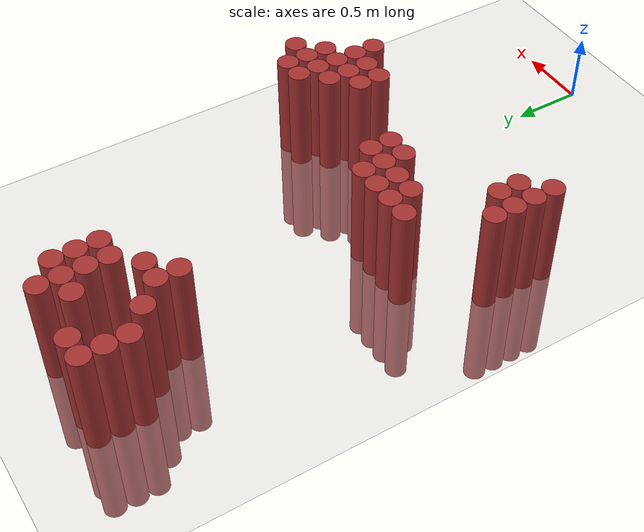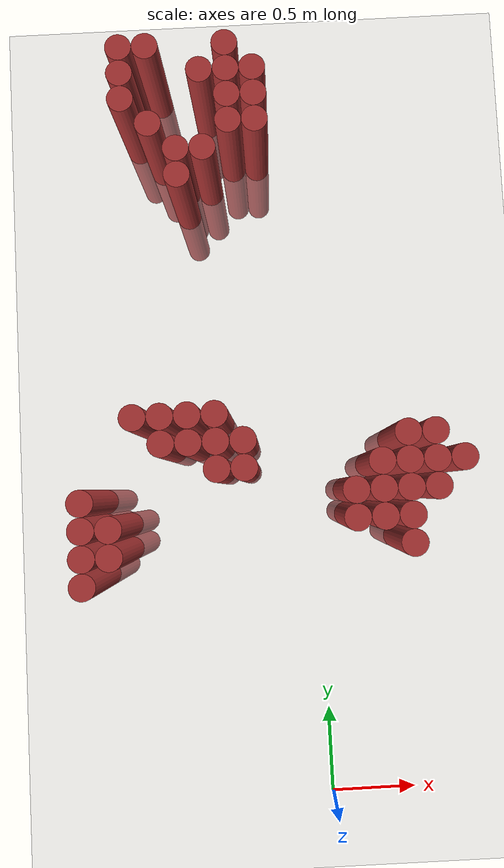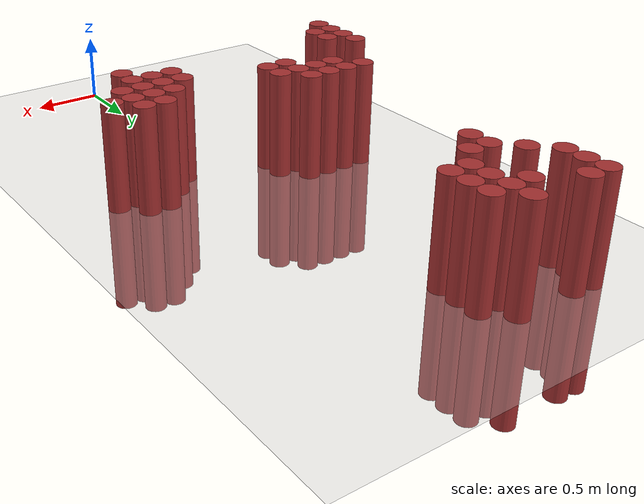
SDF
<sdf version="1.6">
 <world name="default">
  <model name="ground_plane">
   <static>1</static>
   <link name="link">
    <collision name="collision">
     <geometry><plane><normal>0 0 1</normal><size>100 100</size></plane></geometry>
     <surface><friction><ode><mu>100</mu><mu2>50</mu2></ode></friction></surface>
    </collision>
    <visual name="visual">
     <cast_shadows>0</cast_shadows>
     <geometry><plane><normal>0 0 1</normal><size>100 100</size></plane></geometry>
     <material>
      <script><uri>file://media/materials/scripts/gazebo.material</uri><name>Gazebo/Grey</name></script>
     </material>
    </visual>
   </link>
  </model>
  <model name="unit_cylinder_160">
   <static>1</static>
   <pose>-1.325000 1.375000 0.000000 0.000000 0.000000 0.000000</pose>
   <link name="link">
    <inertial>
     <mass>1</mass>
     <inertia><ixx>0.145833</ixx><ixy>0</ixy><ixz>0</ixz><iyy>0.145833</iyy><iyz>0</iyz><izz>0.125</izz></inertia>
    </inertial>
    <collision name="collision">
     <geometry><cylinder><radius>0.075000</radius><length>1.5</length></cylinder></geometry>
    </collision>
    <visual name="visual">
     <geometry><cylinder><radius>0.075000</radius><length>1.5</length></cylinder></geometry>
     <material>
      <ambient>0.648000 0.192000 0.192000 1</ambient>
      <diffuse>0.648000 0.192000 0.192000 1</diffuse>
     </material>
     <material>
      <script><name>Gazebo/Grey</name><uri>file://media/materials/scripts/gazebo.material</uri></script>
     </material>
    </visual>
   </link>
  </model>
  <model name="unit_cylinder_161">
   <static>1</static>
   <pose>-1.325000 1.525000 0.000000 0.000000 0.000000 0.000000</pose>
   <link name="link">
    <inertial>
     <mass>1</mass>
     <inertia><ixx>0.145833</ixx><ixy>0</ixy><ixz>0</ixz><iyy>0.145833</iyy><iyz>0</iyz><izz>0.125</izz></inertia>
    </inertial>
    <collision name="collision">
     <geometry><cylinder><radius>0.075000</radius><length>1.5</length></cylinder></geometry>
    </collision>
    <visual name="visual">
     <geometry><cylinder><radius>0.075000</radius><length>1.5</length></cylinder></geometry>
     <material>
      <ambient>0.648000 0.192000 0.192000 1</ambient>
      <diffuse>0.648000 0.192000 0.192000 1</diffuse>
     </material>
     <material>
      <script><name>Gazebo/Grey</name><uri>file://media/materials/scripts/gazebo.material</uri></script>
     </material>
    </visual>
   </link>
  </model>
  <model name="unit_cylinder_162">
   <static>1</static>
   <pose>-1.325000 1.675000 0.000000 0.000000 0.000000 0.000000</pose>
   <link name="link">
    <inertial>
     <mass>1</mass>
     <inertia><ixx>0.145833</ixx><ixy>0</ixy><ixz>0</ixz><iyy>0.145833</iyy><iyz>0</iyz><izz>0.125</izz></inertia>
    </inertial>
    <collision name="collision">
     <geometry><cylinder><radius>0.075000</radius><length>1.5</length></cylinder></geometry>
    </collision>
    <visual name="visual">
     <geometry><cylinder><radius>0.075000</radius><length>1.5</length></cylinder></geometry>
     <material>
      <ambient>0.648000 0.192000 0.192000 1</ambient>
      <diffuse>0.648000 0.192000 0.192000 1</diffuse>
     </material>
     <material>
      <script><name>Gazebo/Grey</name><uri>file://media/materials/scripts/gazebo.material</uri></script>
     </material>
    </visual>
   </link>
  </model>
  <model name="unit_cylinder_163">
   <static>1</static>
   <pose>-1.325000 1.825000 0.000000 0.000000 0.000000 0.000000</pose>
   <link name="link">
    <inertial>
     <mass>1</mass>
     <inertia><ixx>0.145833</ixx><ixy>0</ixy><ixz>0</ixz><iyy>0.145833</iyy><iyz>0</iyz><izz>0.125</izz></inertia>
    </inertial>
    <collision name="collision">
     <geometry><cylinder><radius>0.075000</radius><length>1.5</length></cylinder></geometry>
    </collision>
    <visual name="visual">
     <geometry><cylinder><radius>0.075000</radius><length>1.5</length></cylinder></geometry>
     <material>
      <ambient>0.648000 0.192000 0.192000 1</ambient>
      <diffuse>0.648000 0.192000 0.192000 1</diffuse>
     </material>
     <material>
      <script><name>Gazebo/Grey</name><uri>file://media/materials/scripts/gazebo.material</uri></script>
     </material>
    </visual>
   </link>
  </model>
  <model name="unit_cylinder_165">
   <static>1</static>
   <pose>-1.175000 1.525000 0.000000 0.000000 0.000000 0.000000</pose>
   <link name="link">
    <inertial>
     <mass>1</mass>
     <inertia><ixx>0.145833</ixx><ixy>0</ixy><ixz>0</ixz><iyy>0.145833</iyy><iyz>0</iyz><izz>0.125</izz></inertia>
    </inertial>
    <collision name="collision">
     <geometry><cylinder><radius>0.075000</radius><length>1.5</length></cylinder></geometry>
    </collision>
    <visual name="visual">
     <geometry><cylinder><radius>0.075000</radius><length>1.5</length></cylinder></geometry>
     <material>
      <ambient>0.648000 0.192000 0.192000 1</ambient>
      <diffuse>0.648000 0.192000 0.192000 1</diffuse>
     </material>
     <material>
      <script><name>Gazebo/Grey</name><uri>file://media/materials/scripts/gazebo.material</uri></script>
     </material>
    </visual>
   </link>
  </model>
  <model name="unit_cylinder_166">
   <static>1</static>
   <pose>-1.175000 1.675000 0.000000 0.000000 0.000000 0.000000</pose>
   <link name="link">
    <inertial>
     <mass>1</mass>
     <inertia><ixx>0.145833</ixx><ixy>0</ixy><ixz>0</ixz><iyy>0.145833</iyy><iyz>0</iyz><izz>0.125</izz></inertia>
    </inertial>
    <collision name="collision">
     <geometry><cylinder><radius>0.075000</radius><length>1.5</length></cylinder></geometry>
    </collision>
    <visual name="visual">
     <geometry><cylinder><radius>0.075000</radius><length>1.5</length></cylinder></geometry>
     <material>
      <ambient>0.648000 0.192000 0.192000 1</ambient>
      <diffuse>0.648000 0.192000 0.192000 1</diffuse>
     </material>
     <material>
      <script><name>Gazebo/Grey</name><uri>file://media/materials/scripts/gazebo.material</uri></script>
     </material>
    </visual>
   </link>
  </model>
  <model name="unit_cylinder_169">
   <static>1</static>
   <pose>-1.025000 2.275000 0.000000 0.000000 0.000000 0.000000</pose>
   <link name="link">
    <inertial>
     <mass>1</mass>
     <inertia><ixx>0.145833</ixx><ixy>0</ixy><ixz>0</ixz><iyy>0.145833</iyy><iyz>0</iyz><izz>0.125</izz></inertia>
    </inertial>
    <collision name="collision">
     <geometry><cylinder><radius>0.075000</radius><length>1.5</length></cylinder></geometry>
    </collision>
    <visual name="visual">
     <geometry><cylinder><radius>0.075000</radius><length>1.5</length></cylinder></geometry>
     <material>
      <ambient>0.648000 0.192000 0.192000 1</ambient>
      <diffuse>0.648000 0.192000 0.192000 1</diffuse>
     </material>
     <material>
      <script><name>Gazebo/Grey</name><uri>file://media/materials/scripts/gazebo.material</uri></script>
     </material>
    </visual>
   </link>
  </model>
  <model name="unit_cylinder_170">
   <static>1</static>
   <pose>-1.025000 4.075000 0.000000 0.000000 0.000000 0.000000</pose>
   <link name="link">
    <inertial>
     <mass>1</mass>
     <inertia><ixx>0.145833</ixx><ixy>0</ixy><ixz>0</ixz><iyy>0.145833</iyy><iyz>0</iyz><izz>0.125</izz></inertia>
    </inertial>
    <collision name="collision">
     <geometry><cylinder><radius>0.075000</radius><length>1.5</length></cylinder></geometry>
    </collision>
    <visual name="visual">
     <geometry><cylinder><radius>0.075000</radius><length>1.5</length></cylinder></geometry>
     <material>
      <ambient>0.648000 0.192000 0.192000 1</ambient>
      <diffuse>0.648000 0.192000 0.192000 1</diffuse>
     </material>
     <material>
      <script><name>Gazebo/Grey</name><uri>file://media/materials/scripts/gazebo.material</uri></script>
     </material>
    </visual>
   </link>
  </model>
  <model name="unit_cylinder_171">
   <static>1</static>
   <pose>-1.025000 4.225000 0.000000 0.000000 0.000000 0.000000</pose>
   <link name="link">
    <inertial>
     <mass>1</mass>
     <inertia><ixx>0.145833</ixx><ixy>0</ixy><ixz>0</ixz><iyy>0.145833</iyy><iyz>0</iyz><izz>0.125</izz></inertia>
    </inertial>
    <collision name="collision">
     <geometry><cylinder><radius>0.075000</radius><length>1.5</length></cylinder></geometry>
    </collision>
    <visual name="visual">
     <geometry><cylinder><radius>0.075000</radius><length>1.5</length></cylinder></geometry>
     <material>
      <ambient>0.648000 0.192000 0.192000 1</ambient>
      <diffuse>0.648000 0.192000 0.192000 1</diffuse>
     </material>
     <material>
      <script><name>Gazebo/Grey</name><uri>file://media/materials/scripts/gazebo.material</uri></script>
     </material>
    </visual>
   </link>
  </model>
  <model name="unit_cylinder_172">
   <static>1</static>
   <pose>-1.025000 4.375000 0.000000 0.000000 0.000000 0.000000</pose>
   <link name="link">
    <inertial>
     <mass>1</mass>
     <inertia><ixx>0.145833</ixx><ixy>0</ixy><ixz>0</ixz><iyy>0.145833</iyy><iyz>0</iyz><izz>0.125</izz></inertia>
    </inertial>
    <collision name="collision">
     <geometry><cylinder><radius>0.075000</radius><length>1.5</length></cylinder></geometry>
    </collision>
    <visual name="visual">
     <geometry><cylinder><radius>0.075000</radius><length>1.5</length></cylinder></geometry>
     <material>
      <ambient>0.648000 0.192000 0.192000 1</ambient>
      <diffuse>0.648000 0.192000 0.192000 1</diffuse>
     </material>
     <material>
      <script><name>Gazebo/Grey</name><uri>file://media/materials/scripts/gazebo.material</uri></script>
     </material>
    </visual>
   </link>
  </model>
  <model name="unit_cylinder_176">
   <static>1</static>
   <pose>-0.875000 2.125000 0.000000 0.000000 0.000000 0.000000</pose>
   <link name="link">
    <inertial>
     <mass>1</mass>
     <inertia><ixx>0.145833</ixx><ixy>0</ixy><ixz>0</ixz><iyy>0.145833</iyy><iyz>0</iyz><izz>0.125</izz></inertia>
    </inertial>
    <collision name="collision">
     <geometry><cylinder><radius>0.075000</radius><length>1.5</length></cylinder></geometry>
    </collision>
    <visual name="visual">
     <geometry><cylinder><radius>0.075000</radius><length>1.5</length></cylinder></geometry>
     <material>
      <ambient>0.648000 0.192000 0.192000 1</ambient>
      <diffuse>0.648000 0.192000 0.192000 1</diffuse>
     </material>
     <material>
      <script><name>Gazebo/Grey</name><uri>file://media/materials/scripts/gazebo.material</uri></script>
     </material>
    </visual>
   </link>
  </model>
  <model name="unit_cylinder_177">
   <static>1</static>
   <pose>-0.875000 2.275000 0.000000 0.000000 0.000000 0.000000</pose>
   <link name="link">
    <inertial>
     <mass>1</mass>
     <inertia><ixx>0.145833</ixx><ixy>0</ixy><ixz>0</ixz><iyy>0.145833</iyy><iyz>0</iyz><izz>0.125</izz></inertia>
    </inertial>
    <collision name="collision">
     <geometry><cylinder><radius>0.075000</radius><length>1.5</length></cylinder></geometry>
    </collision>
    <visual name="visual">
     <geometry><cylinder><radius>0.075000</radius><length>1.5</length></cylinder></geometry>
     <material>
      <ambient>0.648000 0.192000 0.192000 1</ambient>
      <diffuse>0.648000 0.192000 0.192000 1</diffuse>
     </material>
     <material>
      <script><name>Gazebo/Grey</name><uri>file://media/materials/scripts/gazebo.material</uri></script>
     </material>
    </visual>
   </link>
  </model>
  <model name="unit_cylinder_178">
   <static>1</static>
   <pose>-0.875000 3.925000 0.000000 0.000000 0.000000 0.000000</pose>
   <link name="link">
    <inertial>
     <mass>1</mass>
     <inertia><ixx>0.145833</ixx><ixy>0</ixy><ixz>0</ixz><iyy>0.145833</iyy><iyz>0</iyz><izz>0.125</izz></inertia>
    </inertial>
    <collision name="collision">
     <geometry><cylinder><radius>0.075000</radius><length>1.5</length></cylinder></geometry>
    </collision>
    <visual name="visual">
     <geometry><cylinder><radius>0.075000</radius><length>1.5</length></cylinder></geometry>
     <material>
      <ambient>0.648000 0.192000 0.192000 1</ambient>
      <diffuse>0.648000 0.192000 0.192000 1</diffuse>
     </material>
     <material>
      <script><name>Gazebo/Grey</name><uri>file://media/materials/scripts/gazebo.material</uri></script>
     </material>
    </visual>
   </link>
  </model>
  <model name="unit_cylinder_179">
   <static>1</static>
   <pose>-0.875000 4.375000 0.000000 0.000000 0.000000 0.000000</pose>
   <link name="link">
    <inertial>
     <mass>1</mass>
     <inertia><ixx>0.145833</ixx><ixy>0</ixy><ixz>0</ixz><iyy>0.145833</iyy><iyz>0</iyz><izz>0.125</izz></inertia>
    </inertial>
    <collision name="collision">
     <geometry><cylinder><radius>0.075000</radius><length>1.5</length></cylinder></geometry>
    </collision>
    <visual name="visual">
     <geometry><cylinder><radius>0.075000</radius><length>1.5</length></cylinder></geometry>
     <material>
      <ambient>0.648000 0.192000 0.192000 1</ambient>
      <diffuse>0.648000 0.192000 0.192000 1</diffuse>
     </material>
     <material>
      <script><name>Gazebo/Grey</name><uri>file://media/materials/scripts/gazebo.material</uri></script>
     </material>
    </visual>
   </link>
  </model>
  <model name="unit_cylinder_183">
   <static>1</static>
   <pose>-0.725000 2.125000 0.000000 0.000000 0.000000 0.000000</pose>
   <link name="link">
    <inertial>
     <mass>1</mass>
     <inertia><ixx>0.145833</ixx><ixy>0</ixy><ixz>0</ixz><iyy>0.145833</iyy><iyz>0</iyz><izz>0.125</izz></inertia>
    </inertial>
    <collision name="collision">
     <geometry><cylinder><radius>0.075000</radius><length>1.5</length></cylinder></geometry>
    </collision>
    <visual name="visual">
     <geometry><cylinder><radius>0.075000</radius><length>1.5</length></cylinder></geometry>
     <material>
      <ambient>0.648000 0.192000 0.192000 1</ambient>
      <diffuse>0.648000 0.192000 0.192000 1</diffuse>
     </material>
     <material>
      <script><name>Gazebo/Grey</name><uri>file://media/materials/scripts/gazebo.material</uri></script>
     </material>
    </visual>
   </link>
  </model>
  <model name="unit_cylinder_184">
   <static>1</static>
   <pose>-0.725000 2.275000 0.000000 0.000000 0.000000 0.000000</pose>
   <link name="link">
    <inertial>
     <mass>1</mass>
     <inertia><ixx>0.145833</ixx><ixy>0</ixy><ixz>0</ixz><iyy>0.145833</iyy><iyz>0</iyz><izz>0.125</izz></inertia>
    </inertial>
    <collision name="collision">
     <geometry><cylinder><radius>0.075000</radius><length>1.5</length></cylinder></geometry>
    </collision>
    <visual name="visual">
     <geometry><cylinder><radius>0.075000</radius><length>1.5</length></cylinder></geometry>
     <material>
      <ambient>0.648000 0.192000 0.192000 1</ambient>
      <diffuse>0.648000 0.192000 0.192000 1</diffuse>
     </material>
     <material>
      <script><name>Gazebo/Grey</name><uri>file://media/materials/scripts/gazebo.material</uri></script>
     </material>
    </visual>
   </link>
  </model>
  <model name="unit_cylinder_185">
   <static>1</static>
   <pose>-0.725000 3.625000 0.000000 0.000000 0.000000 0.000000</pose>
   <link name="link">
    <inertial>
     <mass>1</mass>
     <inertia><ixx>0.145833</ixx><ixy>0</ixy><ixz>0</ixz><iyy>0.145833</iyy><iyz>0</iyz><izz>0.125</izz></inertia>
    </inertial>
    <collision name="collision">
     <geometry><cylinder><radius>0.075000</radius><length>1.5</length></cylinder></geometry>
    </collision>
    <visual name="visual">
     <geometry><cylinder><radius>0.075000</radius><length>1.5</length></cylinder></geometry>
     <material>
      <ambient>0.648000 0.192000 0.192000 1</ambient>
      <diffuse>0.648000 0.192000 0.192000 1</diffuse>
     </material>
     <material>
      <script><name>Gazebo/Grey</name><uri>file://media/materials/scripts/gazebo.material</uri></script>
     </material>
    </visual>
   </link>
  </model>
  <model name="unit_cylinder_186">
   <static>1</static>
   <pose>-0.725000 3.775000 0.000000 0.000000 0.000000 0.000000</pose>
   <link name="link">
    <inertial>
     <mass>1</mass>
     <inertia><ixx>0.145833</ixx><ixy>0</ixy><ixz>0</ixz><iyy>0.145833</iyy><iyz>0</iyz><izz>0.125</izz></inertia>
    </inertial>
    <collision name="collision">
     <geometry><cylinder><radius>0.075000</radius><length>1.5</length></cylinder></geometry>
    </collision>
    <visual name="visual">
     <geometry><cylinder><radius>0.075000</radius><length>1.5</length></cylinder></geometry>
     <material>
      <ambient>0.648000 0.192000 0.192000 1</ambient>
      <diffuse>0.648000 0.192000 0.192000 1</diffuse>
     </material>
     <material>
      <script><name>Gazebo/Grey</name><uri>file://media/materials/scripts/gazebo.material</uri></script>
     </material>
    </visual>
   </link>
  </model>
  <model name="unit_cylinder_190">
   <static>1</static>
   <pose>-0.575000 1.975000 0.000000 0.000000 0.000000 0.000000</pose>
   <link name="link">
    <inertial>
     <mass>1</mass>
     <inertia><ixx>0.145833</ixx><ixy>0</ixy><ixz>0</ixz><iyy>0.145833</iyy><iyz>0</iyz><izz>0.125</izz></inertia>
    </inertial>
    <collision name="collision">
     <geometry><cylinder><radius>0.075000</radius><length>1.5</length></cylinder></geometry>
    </collision>
    <visual name="visual">
     <geometry><cylinder><radius>0.075000</radius><length>1.5</length></cylinder></geometry>
     <material>
      <ambient>0.648000 0.192000 0.192000 1</ambient>
      <diffuse>0.648000 0.192000 0.192000 1</diffuse>
     </material>
     <material>
      <script><name>Gazebo/Grey</name><uri>file://media/materials/scripts/gazebo.material</uri></script>
     </material>
    </visual>
   </link>
  </model>
  <model name="unit_cylinder_191">
   <static>1</static>
   <pose>-0.575000 2.125000 0.000000 0.000000 0.000000 0.000000</pose>
   <link name="link">
    <inertial>
     <mass>1</mass>
     <inertia><ixx>0.145833</ixx><ixy>0</ixy><ixz>0</ixz><iyy>0.145833</iyy><iyz>0</iyz><izz>0.125</izz></inertia>
    </inertial>
    <collision name="collision">
     <geometry><cylinder><radius>0.075000</radius><length>1.5</length></cylinder></geometry>
    </collision>
    <visual name="visual">
     <geometry><cylinder><radius>0.075000</radius><length>1.5</length></cylinder></geometry>
     <material>
      <ambient>0.648000 0.192000 0.192000 1</ambient>
      <diffuse>0.648000 0.192000 0.192000 1</diffuse>
     </material>
     <material>
      <script><name>Gazebo/Grey</name><uri>file://media/materials/scripts/gazebo.material</uri></script>
     </material>
    </visual>
   </link>
  </model>
  <model name="unit_cylinder_192">
   <static>1</static>
   <pose>-0.575000 2.275000 0.000000 0.000000 0.000000 0.000000</pose>
   <link name="link">
    <inertial>
     <mass>1</mass>
     <inertia><ixx>0.145833</ixx><ixy>0</ixy><ixz>0</ixz><iyy>0.145833</iyy><iyz>0</iyz><izz>0.125</izz></inertia>
    </inertial>
    <collision name="collision">
     <geometry><cylinder><radius>0.075000</radius><length>1.5</length></cylinder></geometry>
    </collision>
    <visual name="visual">
     <geometry><cylinder><radius>0.075000</radius><length>1.5</length></cylinder></geometry>
     <material>
      <ambient>0.648000 0.192000 0.192000 1</ambient>
      <diffuse>0.648000 0.192000 0.192000 1</diffuse>
     </material>
     <material>
      <script><name>Gazebo/Grey</name><uri>file://media/materials/scripts/gazebo.material</uri></script>
     </material>
    </visual>
   </link>
  </model>
  <model name="unit_cylinder_193">
   <static>1</static>
   <pose>-0.575000 3.775000 0.000000 0.000000 0.000000 0.000000</pose>
   <link name="link">
    <inertial>
     <mass>1</mass>
     <inertia><ixx>0.145833</ixx><ixy>0</ixy><ixz>0</ixz><iyy>0.145833</iyy><iyz>0</iyz><izz>0.125</izz></inertia>
    </inertial>
    <collision name="collision">
     <geometry><cylinder><radius>0.075000</radius><length>1.5</length></cylinder></geometry>
    </collision>
    <visual name="visual">
     <geometry><cylinder><radius>0.075000</radius><length>1.5</length></cylinder></geometry>
     <material>
      <ambient>0.648000 0.192000 0.192000 1</ambient>
      <diffuse>0.648000 0.192000 0.192000 1</diffuse>
     </material>
     <material>
      <script><name>Gazebo/Grey</name><uri>file://media/materials/scripts/gazebo.material</uri></script>
     </material>
    </visual>
   </link>
  </model>
  <model name="unit_cylinder_194">
   <static>1</static>
   <pose>-0.575000 4.225000 0.000000 0.000000 0.000000 0.000000</pose>
   <link name="link">
    <inertial>
     <mass>1</mass>
     <inertia><ixx>0.145833</ixx><ixy>0</ixy><ixz>0</ixz><iyy>0.145833</iyy><iyz>0</iyz><izz>0.125</izz></inertia>
    </inertial>
    <collision name="collision">
     <geometry><cylinder><radius>0.075000</radius><length>1.5</length></cylinder></geometry>
    </collision>
    <visual name="visual">
     <geometry><cylinder><radius>0.075000</radius><length>1.5</length></cylinder></geometry>
     <material>
      <ambient>0.648000 0.192000 0.192000 1</ambient>
      <diffuse>0.648000 0.192000 0.192000 1</diffuse>
     </material>
     <material>
      <script><name>Gazebo/Grey</name><uri>file://media/materials/scripts/gazebo.material</uri></script>
     </material>
    </visual>
   </link>
  </model>
  <model name="unit_cylinder_199">
   <static>1</static>
   <pose>-0.425000 1.975000 0.000000 0.000000 0.000000 0.000000</pose>
   <link name="link">
    <inertial>
     <mass>1</mass>
     <inertia><ixx>0.145833</ixx><ixy>0</ixy><ixz>0</ixz><iyy>0.145833</iyy><iyz>0</iyz><izz>0.125</izz></inertia>
    </inertial>
    <collision name="collision">
     <geometry><cylinder><radius>0.075000</radius><length>1.5</length></cylinder></geometry>
    </collision>
    <visual name="visual">
     <geometry><cylinder><radius>0.075000</radius><length>1.5</length></cylinder></geometry>
     <material>
      <ambient>0.648000 0.192000 0.192000 1</ambient>
      <diffuse>0.648000 0.192000 0.192000 1</diffuse>
     </material>
     <material>
      <script><name>Gazebo/Grey</name><uri>file://media/materials/scripts/gazebo.material</uri></script>
     </material>
    </visual>
   </link>
  </model>
  <model name="unit_cylinder_200">
   <static>1</static>
   <pose>-0.425000 2.125000 0.000000 0.000000 0.000000 0.000000</pose>
   <link name="link">
    <inertial>
     <mass>1</mass>
     <inertia><ixx>0.145833</ixx><ixy>0</ixy><ixz>0</ixz><iyy>0.145833</iyy><iyz>0</iyz><izz>0.125</izz></inertia>
    </inertial>
    <collision name="collision">
     <geometry><cylinder><radius>0.075000</radius><length>1.5</length></cylinder></geometry>
    </collision>
    <visual name="visual">
     <geometry><cylinder><radius>0.075000</radius><length>1.5</length></cylinder></geometry>
     <material>
      <ambient>0.648000 0.192000 0.192000 1</ambient>
      <diffuse>0.648000 0.192000 0.192000 1</diffuse>
     </material>
     <material>
      <script><name>Gazebo/Grey</name><uri>file://media/materials/scripts/gazebo.material</uri></script>
     </material>
    </visual>
   </link>
  </model>
  <model name="unit_cylinder_201">
   <static>1</static>
   <pose>-0.425000 3.925000 0.000000 0.000000 0.000000 0.000000</pose>
   <link name="link">
    <inertial>
     <mass>1</mass>
     <inertia><ixx>0.145833</ixx><ixy>0</ixy><ixz>0</ixz><iyy>0.145833</iyy><iyz>0</iyz><izz>0.125</izz></inertia>
    </inertial>
    <collision name="collision">
     <geometry><cylinder><radius>0.075000</radius><length>1.5</length></cylinder></geometry>
    </collision>
    <visual name="visual">
     <geometry><cylinder><radius>0.075000</radius><length>1.5</length></cylinder></geometry>
     <material>
      <ambient>0.648000 0.192000 0.192000 1</ambient>
      <diffuse>0.648000 0.192000 0.192000 1</diffuse>
     </material>
     <material>
      <script><name>Gazebo/Grey</name><uri>file://media/materials/scripts/gazebo.material</uri></script>
     </material>
    </visual>
   </link>
  </model>
  <model name="unit_cylinder_202">
   <static>1</static>
   <pose>-0.425000 4.075000 0.000000 0.000000 0.000000 0.000000</pose>
   <link name="link">
    <inertial>
     <mass>1</mass>
     <inertia><ixx>0.145833</ixx><ixy>0</ixy><ixz>0</ixz><iyy>0.145833</iyy><iyz>0</iyz><izz>0.125</izz></inertia>
    </inertial>
    <collision name="collision">
     <geometry><cylinder><radius>0.075000</radius><length>1.5</length></cylinder></geometry>
    </collision>
    <visual name="visual">
     <geometry><cylinder><radius>0.075000</radius><length>1.5</length></cylinder></geometry>
     <material>
      <ambient>0.648000 0.192000 0.192000 1</ambient>
      <diffuse>0.648000 0.192000 0.192000 1</diffuse>
     </material>
     <material>
      <script><name>Gazebo/Grey</name><uri>file://media/materials/scripts/gazebo.material</uri></script>
     </material>
    </visual>
   </link>
  </model>
  <model name="unit_cylinder_203">
   <static>1</static>
   <pose>-0.425000 4.225000 0.000000 0.000000 0.000000 0.000000</pose>
   <link name="link">
    <inertial>
     <mass>1</mass>
     <inertia><ixx>0.145833</ixx><ixy>0</ixy><ixz>0</ixz><iyy>0.145833</iyy><iyz>0</iyz><izz>0.125</izz></inertia>
    </inertial>
    <collision name="collision">
     <geometry><cylinder><radius>0.075000</radius><length>1.5</length></cylinder></geometry>
    </collision>
    <visual name="visual">
     <geometry><cylinder><radius>0.075000</radius><length>1.5</length></cylinder></geometry>
     <material>
      <ambient>0.648000 0.192000 0.192000 1</ambient>
      <diffuse>0.648000 0.192000 0.192000 1</diffuse>
     </material>
     <material>
      <script><name>Gazebo/Grey</name><uri>file://media/materials/scripts/gazebo.material</uri></script>
     </material>
    </visual>
   </link>
  </model>
  <model name="unit_cylinder_204">
   <static>1</static>
   <pose>-0.425000 4.375000 0.000000 0.000000 0.000000 0.000000</pose>
   <link name="link">
    <inertial>
     <mass>1</mass>
     <inertia><ixx>0.145833</ixx><ixy>0</ixy><ixz>0</ixz><iyy>0.145833</iyy><iyz>0</iyz><izz>0.125</izz></inertia>
    </inertial>
    <collision name="collision">
     <geometry><cylinder><radius>0.075000</radius><length>1.5</length></cylinder></geometry>
    </collision>
    <visual name="visual">
     <geometry><cylinder><radius>0.075000</radius><length>1.5</length></cylinder></geometry>
     <material>
      <ambient>0.648000 0.192000 0.192000 1</ambient>
      <diffuse>0.648000 0.192000 0.192000 1</diffuse>
     </material>
     <material>
      <script><name>Gazebo/Grey</name><uri>file://media/materials/scripts/gazebo.material</uri></script>
     </material>
    </visual>
   </link>
  </model>
  <model name="unit_cylinder_205">
   <static>1</static>
   <pose>-0.275000 3.925000 0.000000 0.000000 0.000000 0.000000</pose>
   <link name="link">
    <inertial>
     <mass>1</mass>
     <inertia><ixx>0.145833</ixx><ixy>0</ixy><ixz>0</ixz><iyy>0.145833</iyy><iyz>0</iyz><izz>0.125</izz></inertia>
    </inertial>
    <collision name="collision">
     <geometry><cylinder><radius>0.075000</radius><length>1.5</length></cylinder></geometry>
    </collision>
    <visual name="visual">
     <geometry><cylinder><radius>0.075000</radius><length>1.5</length></cylinder></geometry>
     <material>
      <ambient>0.648000 0.192000 0.192000 1</ambient>
      <diffuse>0.648000 0.192000 0.192000 1</diffuse>
     </material>
     <material>
      <script><name>Gazebo/Grey</name><uri>file://media/materials/scripts/gazebo.material</uri></script>
     </material>
    </visual>
   </link>
  </model>
  <model name="unit_cylinder_206">
   <static>1</static>
   <pose>-0.275000 4.075000 0.000000 0.000000 0.000000 0.000000</pose>
   <link name="link">
    <inertial>
     <mass>1</mass>
     <inertia><ixx>0.145833</ixx><ixy>0</ixy><ixz>0</ixz><iyy>0.145833</iyy><iyz>0</iyz><izz>0.125</izz></inertia>
    </inertial>
    <collision name="collision">
     <geometry><cylinder><radius>0.075000</radius><length>1.5</length></cylinder></geometry>
    </collision>
    <visual name="visual">
     <geometry><cylinder><radius>0.075000</radius><length>1.5</length></cylinder></geometry>
     <material>
      <ambient>0.648000 0.192000 0.192000 1</ambient>
      <diffuse>0.648000 0.192000 0.192000 1</diffuse>
     </material>
     <material>
      <script><name>Gazebo/Grey</name><uri>file://media/materials/scripts/gazebo.material</uri></script>
     </material>
    </visual>
   </link>
  </model>
  <model name="unit_cylinder_207">
   <static>1</static>
   <pose>-0.275000 4.225000 0.000000 0.000000 0.000000 0.000000</pose>
   <link name="link">
    <inertial>
     <mass>1</mass>
     <inertia><ixx>0.145833</ixx><ixy>0</ixy><ixz>0</ixz><iyy>0.145833</iyy><iyz>0</iyz><izz>0.125</izz></inertia>
    </inertial>
    <collision name="collision">
     <geometry><cylinder><radius>0.075000</radius><length>1.5</length></cylinder></geometry>
    </collision>
    <visual name="visual">
     <geometry><cylinder><radius>0.075000</radius><length>1.5</length></cylinder></geometry>
     <material>
      <ambient>0.648000 0.192000 0.192000 1</ambient>
      <diffuse>0.648000 0.192000 0.192000 1</diffuse>
     </material>
     <material>
      <script><name>Gazebo/Grey</name><uri>file://media/materials/scripts/gazebo.material</uri></script>
     </material>
    </visual>
   </link>
  </model>
  <model name="unit_cylinder_208">
   <static>1</static>
   <pose>0.175000 1.675000 0.000000 0.000000 0.000000 0.000000</pose>
   <link name="link">
    <inertial>
     <mass>1</mass>
     <inertia><ixx>0.145833</ixx><ixy>0</ixy><ixz>0</ixz><iyy>0.145833</iyy><iyz>0</iyz><izz>0.125</izz></inertia>
    </inertial>
    <collision name="collision">
     <geometry><cylinder><radius>0.075000</radius><length>1.5</length></cylinder></geometry>
    </collision>
    <visual name="visual">
     <geometry><cylinder><radius>0.075000</radius><length>1.5</length></cylinder></geometry>
     <material>
      <ambient>0.648000 0.192000 0.192000 1</ambient>
      <diffuse>0.648000 0.192000 0.192000 1</diffuse>
     </material>
     <material>
      <script><name>Gazebo/Grey</name><uri>file://media/materials/scripts/gazebo.material</uri></script>
     </material>
    </visual>
   </link>
  </model>
  <model name="unit_cylinder_209">
   <static>1</static>
   <pose>0.175000 1.825000 0.000000 0.000000 0.000000 0.000000</pose>
   <link name="link">
    <inertial>
     <mass>1</mass>
     <inertia><ixx>0.145833</ixx><ixy>0</ixy><ixz>0</ixz><iyy>0.145833</iyy><iyz>0</iyz><izz>0.125</izz></inertia>
    </inertial>
    <collision name="collision">
     <geometry><cylinder><radius>0.075000</radius><length>1.5</length></cylinder></geometry>
    </collision>
    <visual name="visual">
     <geometry><cylinder><radius>0.075000</radius><length>1.5</length></cylinder></geometry>
     <material>
      <ambient>0.648000 0.192000 0.192000 1</ambient>
      <diffuse>0.648000 0.192000 0.192000 1</diffuse>
     </material>
     <material>
      <script><name>Gazebo/Grey</name><uri>file://media/materials/scripts/gazebo.material</uri></script>
     </material>
    </visual>
   </link>
  </model>
  <model name="unit_cylinder_210">
   <static>1</static>
   <pose>0.325000 1.675000 0.000000 0.000000 0.000000 0.000000</pose>
   <link name="link">
    <inertial>
     <mass>1</mass>
     <inertia><ixx>0.145833</ixx><ixy>0</ixy><ixz>0</ixz><iyy>0.145833</iyy><iyz>0</iyz><izz>0.125</izz></inertia>
    </inertial>
    <collision name="collision">
     <geometry><cylinder><radius>0.075000</radius><length>1.5</length></cylinder></geometry>
    </collision>
    <visual name="visual">
     <geometry><cylinder><radius>0.075000</radius><length>1.5</length></cylinder></geometry>
     <material>
      <ambient>0.648000 0.192000 0.192000 1</ambient>
      <diffuse>0.648000 0.192000 0.192000 1</diffuse>
     </material>
     <material>
      <script><name>Gazebo/Grey</name><uri>file://media/materials/scripts/gazebo.material</uri></script>
     </material>
    </visual>
   </link>
  </model>
  <model name="unit_cylinder_211">
   <static>1</static>
   <pose>0.325000 1.825000 0.000000 0.000000 0.000000 0.000000</pose>
   <link name="link">
    <inertial>
     <mass>1</mass>
     <inertia><ixx>0.145833</ixx><ixy>0</ixy><ixz>0</ixz><iyy>0.145833</iyy><iyz>0</iyz><izz>0.125</izz></inertia>
    </inertial>
    <collision name="collision">
     <geometry><cylinder><radius>0.075000</radius><length>1.5</length></cylinder></geometry>
    </collision>
    <visual name="visual">
     <geometry><cylinder><radius>0.075000</radius><length>1.5</length></cylinder></geometry>
     <material>
      <ambient>0.648000 0.192000 0.192000 1</ambient>
      <diffuse>0.648000 0.192000 0.192000 1</diffuse>
     </material>
     <material>
      <script><name>Gazebo/Grey</name><uri>file://media/materials/scripts/gazebo.material</uri></script>
     </material>
    </visual>
   </link>
  </model>
  <model name="unit_cylinder_212">
   <static>1</static>
   <pose>0.325000 1.975000 0.000000 0.000000 0.000000 0.000000</pose>
   <link name="link">
    <inertial>
     <mass>1</mass>
     <inertia><ixx>0.145833</ixx><ixy>0</ixy><ixz>0</ixz><iyy>0.145833</iyy><iyz>0</iyz><izz>0.125</izz></inertia>
    </inertial>
    <collision name="collision">
     <geometry><cylinder><radius>0.075000</radius><length>1.5</length></cylinder></geometry>
    </collision>
    <visual name="visual">
     <geometry><cylinder><radius>0.075000</radius><length>1.5</length></cylinder></geometry>
     <material>
      <ambient>0.648000 0.192000 0.192000 1</ambient>
      <diffuse>0.648000 0.192000 0.192000 1</diffuse>
     </material>
     <material>
      <script><name>Gazebo/Grey</name><uri>file://media/materials/scripts/gazebo.material</uri></script>
     </material>
    </visual>
   </link>
  </model>
  <model name="unit_cylinder_213">
   <static>1</static>
   <pose>0.475000 1.525000 0.000000 0.000000 0.000000 0.000000</pose>
   <link name="link">
    <inertial>
     <mass>1</mass>
     <inertia><ixx>0.145833</ixx><ixy>0</ixy><ixz>0</ixz><iyy>0.145833</iyy><iyz>0</iyz><izz>0.125</izz></inertia>
    </inertial>
    <collision name="collision">
     <geometry><cylinder><radius>0.075000</radius><length>1.5</length></cylinder></geometry>
    </collision>
    <visual name="visual">
     <geometry><cylinder><radius>0.075000</radius><length>1.5</length></cylinder></geometry>
     <material>
      <ambient>0.648000 0.192000 0.192000 1</ambient>
      <diffuse>0.648000 0.192000 0.192000 1</diffuse>
     </material>
     <material>
      <script><name>Gazebo/Grey</name><uri>file://media/materials/scripts/gazebo.material</uri></script>
     </material>
    </visual>
   </link>
  </model>
  <model name="unit_cylinder_214">
   <static>1</static>
   <pose>0.475000 1.675000 0.000000 0.000000 0.000000 0.000000</pose>
   <link name="link">
    <inertial>
     <mass>1</mass>
     <inertia><ixx>0.145833</ixx><ixy>0</ixy><ixz>0</ixz><iyy>0.145833</iyy><iyz>0</iyz><izz>0.125</izz></inertia>
    </inertial>
    <collision name="collision">
     <geometry><cylinder><radius>0.075000</radius><length>1.5</length></cylinder></geometry>
    </collision>
    <visual name="visual">
     <geometry><cylinder><radius>0.075000</radius><length>1.5</length></cylinder></geometry>
     <material>
      <ambient>0.648000 0.192000 0.192000 1</ambient>
      <diffuse>0.648000 0.192000 0.192000 1</diffuse>
     </material>
     <material>
      <script><name>Gazebo/Grey</name><uri>file://media/materials/scripts/gazebo.material</uri></script>
     </material>
    </visual>
   </link>
  </model>
  <model name="unit_cylinder_215">
   <static>1</static>
   <pose>0.475000 1.825000 0.000000 0.000000 0.000000 0.000000</pose>
   <link name="link">
    <inertial>
     <mass>1</mass>
     <inertia><ixx>0.145833</ixx><ixy>0</ixy><ixz>0</ixz><iyy>0.145833</iyy><iyz>0</iyz><izz>0.125</izz></inertia>
    </inertial>
    <collision name="collision">
     <geometry><cylinder><radius>0.075000</radius><length>1.5</length></cylinder></geometry>
    </collision>
    <visual name="visual">
     <geometry><cylinder><radius>0.075000</radius><length>1.5</length></cylinder></geometry>
     <material>
      <ambient>0.648000 0.192000 0.192000 1</ambient>
      <diffuse>0.648000 0.192000 0.192000 1</diffuse>
     </material>
     <material>
      <script><name>Gazebo/Grey</name><uri>file://media/materials/scripts/gazebo.material</uri></script>
     </material>
    </visual>
   </link>
  </model>
  <model name="unit_cylinder_216">
   <static>1</static>
   <pose>0.475000 1.975000 0.000000 0.000000 0.000000 0.000000</pose>
   <link name="link">
    <inertial>
     <mass>1</mass>
     <inertia><ixx>0.145833</ixx><ixy>0</ixy><ixz>0</ixz><iyy>0.145833</iyy><iyz>0</iyz><izz>0.125</izz></inertia>
    </inertial>
    <collision name="collision">
     <geometry><cylinder><radius>0.075000</radius><length>1.5</length></cylinder></geometry>
    </collision>
    <visual name="visual">
     <geometry><cylinder><radius>0.075000</radius><length>1.5</length></cylinder></geometry>
     <material>
      <ambient>0.648000 0.192000 0.192000 1</ambient>
      <diffuse>0.648000 0.192000 0.192000 1</diffuse>
     </material>
     <material>
      <script><name>Gazebo/Grey</name><uri>file://media/materials/scripts/gazebo.material</uri></script>
     </material>
    </visual>
   </link>
  </model>
  <model name="unit_cylinder_217">
   <static>1</static>
   <pose>0.475000 2.125000 0.000000 0.000000 0.000000 0.000000</pose>
   <link name="link">
    <inertial>
     <mass>1</mass>
     <inertia><ixx>0.145833</ixx><ixy>0</ixy><ixz>0</ixz><iyy>0.145833</iyy><iyz>0</iyz><izz>0.125</izz></inertia>
    </inertial>
    <collision name="collision">
     <geometry><cylinder><radius>0.075000</radius><length>1.5</length></cylinder></geometry>
    </collision>
    <visual name="visual">
     <geometry><cylinder><radius>0.075000</radius><length>1.5</length></cylinder></geometry>
     <material>
      <ambient>0.648000 0.192000 0.192000 1</ambient>
      <diffuse>0.648000 0.192000 0.192000 1</diffuse>
     </material>
     <material>
      <script><name>Gazebo/Grey</name><uri>file://media/materials/scripts/gazebo.material</uri></script>
     </material>
    </visual>
   </link>
  </model>
  <model name="unit_cylinder_218">
   <static>1</static>
   <pose>0.625000 1.825000 0.000000 0.000000 0.000000 0.000000</pose>
   <link name="link">
    <inertial>
     <mass>1</mass>
     <inertia><ixx>0.145833</ixx><ixy>0</ixy><ixz>0</ixz><iyy>0.145833</iyy><iyz>0</iyz><izz>0.125</izz></inertia>
    </inertial>
    <collision name="collision">
     <geometry><cylinder><radius>0.075000</radius><length>1.5</length></cylinder></geometry>
    </collision>
    <visual name="visual">
     <geometry><cylinder><radius>0.075000</radius><length>1.5</length></cylinder></geometry>
     <material>
      <ambient>0.648000 0.192000 0.192000 1</ambient>
      <diffuse>0.648000 0.192000 0.192000 1</diffuse>
     </material>
     <material>
      <script><name>Gazebo/Grey</name><uri>file://media/materials/scripts/gazebo.material</uri></script>
     </material>
    </visual>
   </link>
  </model>
  <model name="unit_cylinder_219">
   <static>1</static>
   <pose>0.625000 1.975000 0.000000 0.000000 0.000000 0.000000</pose>
   <link name="link">
    <inertial>
     <mass>1</mass>
     <inertia><ixx>0.145833</ixx><ixy>0</ixy><ixz>0</ixz><iyy>0.145833</iyy><iyz>0</iyz><izz>0.125</izz></inertia>
    </inertial>
    <collision name="collision">
     <geometry><cylinder><radius>0.075000</radius><length>1.5</length></cylinder></geometry>
    </collision>
    <visual name="visual">
     <geometry><cylinder><radius>0.075000</radius><length>1.5</length></cylinder></geometry>
     <material>
      <ambient>0.648000 0.192000 0.192000 1</ambient>
      <diffuse>0.648000 0.192000 0.192000 1</diffuse>
     </material>
     <material>
      <script><name>Gazebo/Grey</name><uri>file://media/materials/scripts/gazebo.material</uri></script>
     </material>
    </visual>
   </link>
  </model>
  <model name="unit_cylinder_220">
   <static>1</static>
   <pose>0.625000 2.125000 0.000000 0.000000 0.000000 0.000000</pose>
   <link name="link">
    <inertial>
     <mass>1</mass>
     <inertia><ixx>0.145833</ixx><ixy>0</ixy><ixz>0</ixz><iyy>0.145833</iyy><iyz>0</iyz><izz>0.125</izz></inertia>
    </inertial>
    <collision name="collision">
     <geometry><cylinder><radius>0.075000</radius><length>1.5</length></cylinder></geometry>
    </collision>
    <visual name="visual">
     <geometry><cylinder><radius>0.075000</radius><length>1.5</length></cylinder></geometry>
     <material>
      <ambient>0.648000 0.192000 0.192000 1</ambient>
      <diffuse>0.648000 0.192000 0.192000 1</diffuse>
     </material>
     <material>
      <script><name>Gazebo/Grey</name><uri>file://media/materials/scripts/gazebo.material</uri></script>
     </material>
    </visual>
   </link>
  </model>
  <model name="unit_cylinder_221">
   <static>1</static>
   <pose>0.775000 1.975000 0.000000 0.000000 0.000000 0.000000</pose>
   <link name="link">
    <inertial>
     <mass>1</mass>
     <inertia><ixx>0.145833</ixx><ixy>0</ixy><ixz>0</ixz><iyy>0.145833</iyy><iyz>0</iyz><izz>0.125</izz></inertia>
    </inertial>
    <collision name="collision">
     <geometry><cylinder><radius>0.075000</radius><length>1.5</length></cylinder></geometry>
    </collision>
    <visual name="visual">
     <geometry><cylinder><radius>0.075000</radius><length>1.5</length></cylinder></geometry>
     <material>
      <ambient>0.648000 0.192000 0.192000 1</ambient>
      <diffuse>0.648000 0.192000 0.192000 1</diffuse>
     </material>
     <material>
      <script><name>Gazebo/Grey</name><uri>file://media/materials/scripts/gazebo.material</uri></script>
     </material>
    </visual>
   </link>
  </model>
 </world>
</sdf>
